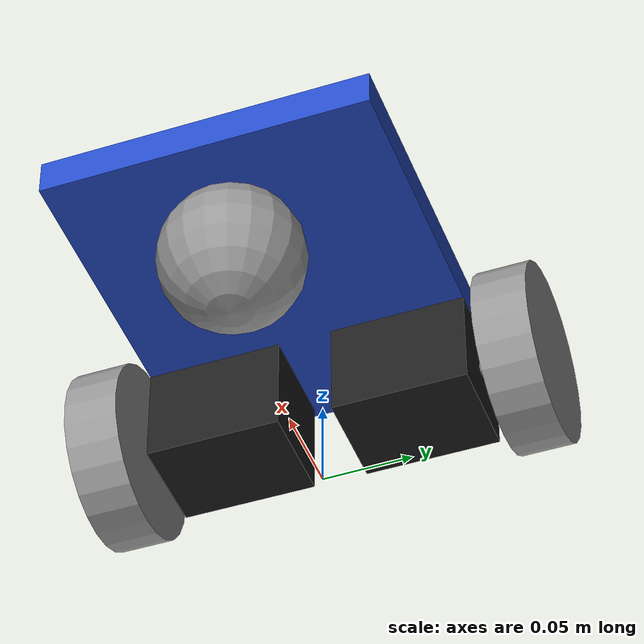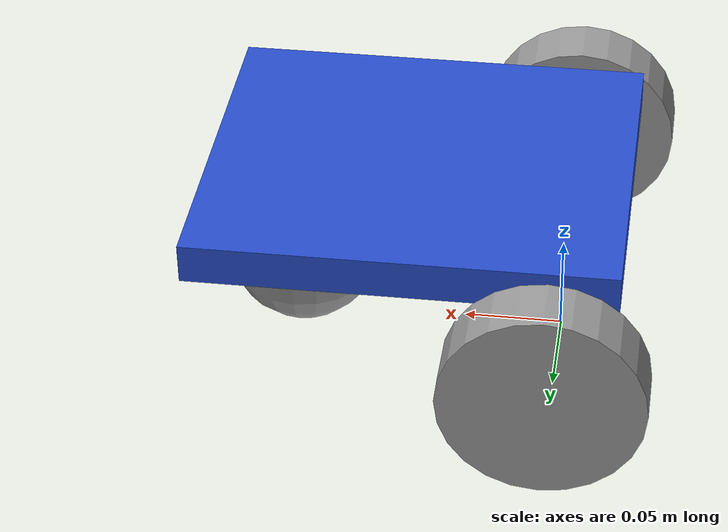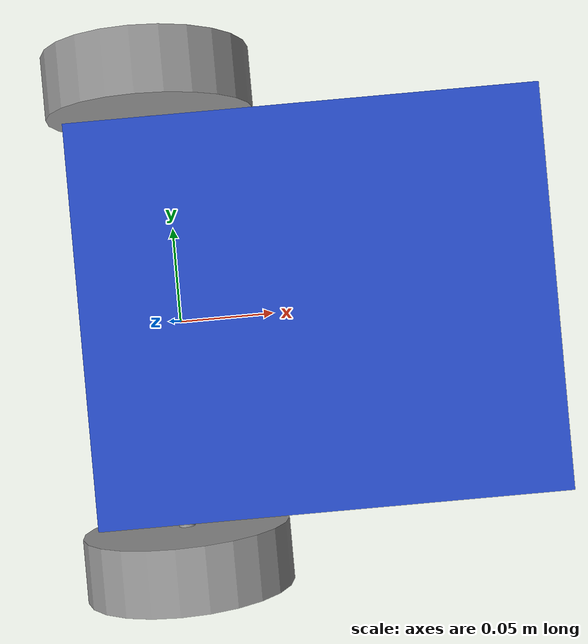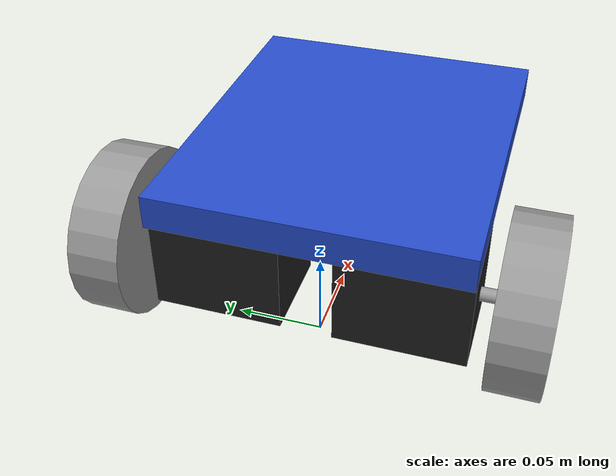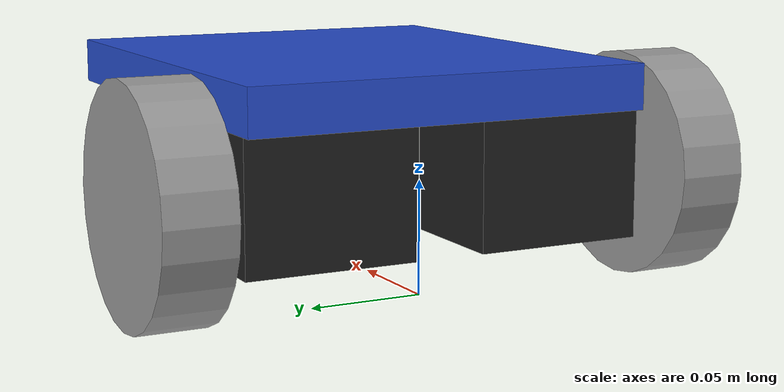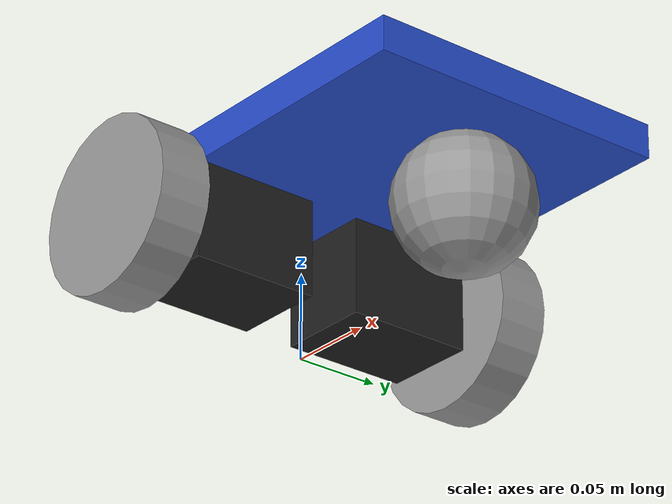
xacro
<?xml version="1.0"?>
<robot name="brutusbot" xmlns:xacro="http://www.ros.org/wiki/xacro">

    <xacro:property name="base_length" value="0.21" />
    <xacro:property name="base_width" value="0.18" />
    <xacro:property name="base_height" value="0.02" />
    <xacro:property name="base_mass" value="5.0" />
    <xacro:property name="motor_length" value="0.075" />
    <xacro:property name="motor_width" value="0.056" />
    <xacro:property name="motor_height" value="0.056" />
    <xacro:property name="motor_mass" value="1.0" />
    <xacro:property name="motor_position" value="${-((base_length / 2.0) - (motor_width / 2.0) - 0.005)}" />
    <xacro:property name="wheel_radius" value="0.05" />
    <xacro:property name="wheel_length" value="0.03" />
    <xacro:property name="wheel_separation" value="0.23" />
    <!-- distance from the motor face (at the base side) to the wheel centre, along the shaft -->
    <xacro:property name="wheel_offset" value="${wheel_separation / 2.0 - base_width / 2.0}" />
    <xacro:property name="shaft_radius" value="0.004" />
    <xacro:property name="wheel_mass" value="1.0" />
    <xacro:property name="caster_wheel_radius" value="${(wheel_radius + motor_height / 2.0) / 2.0}" />
    <xacro:property name="caster_wheel_mass" value="1.0" />
    <xacro:property name="caster_wheel_position" value="${(base_length / 2.0) - caster_wheel_radius - 0.005}" />
    <xacro:property name="base_joint_x" value="${-motor_position}" />
    <xacro:property name="base_joint_z" value="${wheel_radius + motor_height / 2.0}" />

    <link name="base_footprint"/>

    <link name="base_link">
        <visual>
            <geometry>
                <box size="${base_length} ${base_width} ${base_height}"/>
            </geometry>
            <origin xyz="0 0 ${base_height / 2.0}" rpy="0 0 0"/>
            <material name="blue"/>
        </visual>
        <collision>
            <geometry>
                <box size="${base_length} ${base_width} ${base_height}"/>
            </geometry>
            <origin xyz="0 0 ${base_height / 2.0}" rpy="0 0 0"/>
        </collision>
        <xacro:box_inertia m="${base_mass}" x="${base_length}" y="${base_width}" z="${base_height}"
            o_xyz="0 0 ${base_height / 2.0}" o_rpy="0 0 0"/>
    </link>

    <joint name="base_joint" type="fixed">
        <parent link="base_footprint"/>
        <child link="base_link" />
        <origin xyz="${base_joint_x} 0 ${base_joint_z}" rpy="0 0 0"/>
    </joint>

    <xacro:macro name="motor_link" params="prefix">
        <link name="${prefix}_motor_link">
            <visual>
                <geometry>
                    <box size="${motor_length} ${motor_width} ${motor_height}"/>
                </geometry>
                <origin xyz="${-motor_length / 2.0} 0 0" rpy="0 0 0"/>
                <material name="black"/>
            </visual>
            <collision>
                <geometry>
                    <box size="${motor_length} ${motor_width} ${motor_height}"/>
                </geometry>
                <origin xyz="${-motor_length / 2.0} 0 0" rpy="0 0 0"/>
            </collision>
            <xacro:box_inertia m="${motor_mass}" x="${motor_length}" y="${motor_width}" z="${motor_height}"
                o_xyz="${-motor_length / 2.0} 0 0" o_rpy="0 0 0"/>
        </link>

        <!-- Shaft from the motor face to the wheel centre; static, visual only -->
        <link name="${prefix}_shaft_link">
            <visual>
                <geometry>
                    <cylinder radius="${shaft_radius}" length="${wheel_offset}"/>
                </geometry>
                <origin xyz="${wheel_offset / 2.0} 0 0" rpy="0 ${pi / 2.0} 0"/>
                <material name="gray"/>
            </visual>
        </link>

        <joint name="${prefix}_motor_shaft_joint" type="fixed">
            <parent link="${prefix}_motor_link"/>
            <child link="${prefix}_shaft_link"/>
            <origin xyz="0 0 0" rpy="0 0 0"/>
        </joint>
    </xacro:macro>

    <xacro:motor_link prefix="left" />
    <xacro:motor_link prefix="right" />

    <joint name="base_left_motor_joint" type="fixed">
        <parent link="base_link"/>
        <child link="left_motor_link" />
        <origin xyz="${motor_position} ${base_width / 2.0} ${-motor_height / 2.0}" rpy="0 0 ${pi / 2.0}"/>
    </joint>

    <joint name="base_right_motor_joint" type="fixed">
        <parent link="base_link"/>
        <child link="right_motor_link" />
        <origin xyz="${motor_position} ${-base_width / 2.0} ${-motor_height / 2.0}" rpy="0 0 ${-pi / 2.0}"/>
    </joint>

    <xacro:macro name="wheel_link" params="prefix">
        <link name="${prefix}_wheel_link">
            <visual>
                <geometry>
                    <cylinder radius="${wheel_radius}" length="${wheel_length}"/>
                </geometry>
                <origin xyz="0 0 0" rpy="0 0 0"/>
                <material name="gray"/>
            </visual>
            <collision>
                <geometry>
                    <sphere radius="${wheel_radius}"/>
                </geometry>
                <origin xyz="0 0 0" rpy="0 0 0"/>
            </collision>
            <xacro:cylinder_inertia m="${wheel_mass}" r="${wheel_radius}" h="${wheel_length}"
                o_xyz="0 0 0" o_rpy="0 0 0"/>
        </link>
    </xacro:macro>

    <xacro:wheel_link prefix="left" />
    <xacro:wheel_link prefix="right" />

    <joint name="left_motor_wheel_joint" type="continuous">
        <parent link="left_motor_link"/>
        <child link="left_wheel_link"/>
        <origin xyz="${wheel_offset} 0 0" rpy="0 ${pi / 2.0} 0"/>
        <axis xyz="0 0 1"/>
    </joint>

    <joint name="right_motor_wheel_joint" type="continuous">
        <parent link="right_motor_link"/>
        <child link="right_wheel_link"/>
        <origin xyz="${wheel_offset} 0 0" rpy="0 ${pi / 2.0} 0"/>
        <axis xyz="0 0 -1"/>
    </joint>

    <link name="caster_wheel_link">
        <visual>
            <geometry>
                <sphere radius="${caster_wheel_radius}"/>
            </geometry>
            <origin xyz="0 0 0" rpy="0 0 0"/>
            <material name="gray"/>
        </visual>
        <collision>
            <geometry>
                <sphere radius="${caster_wheel_radius}"/>
            </geometry>
            <origin xyz="0 0 0" rpy="0 0 0"/>
        </collision>
        <xacro:sphere_inertia m="${caster_wheel_mass}" r="${caster_wheel_radius}"
            o_xyz="0 0 0" o_rpy="0 0 0"/>
    </link>

    <joint name="base_caster_wheel_joint" type="fixed">
        <parent link="base_link"/>
        <child link="caster_wheel_link"/>
        <origin xyz="${caster_wheel_position} 0 ${-caster_wheel_radius}" rpy="0 0 0"/>
    </joint>

</robot>
